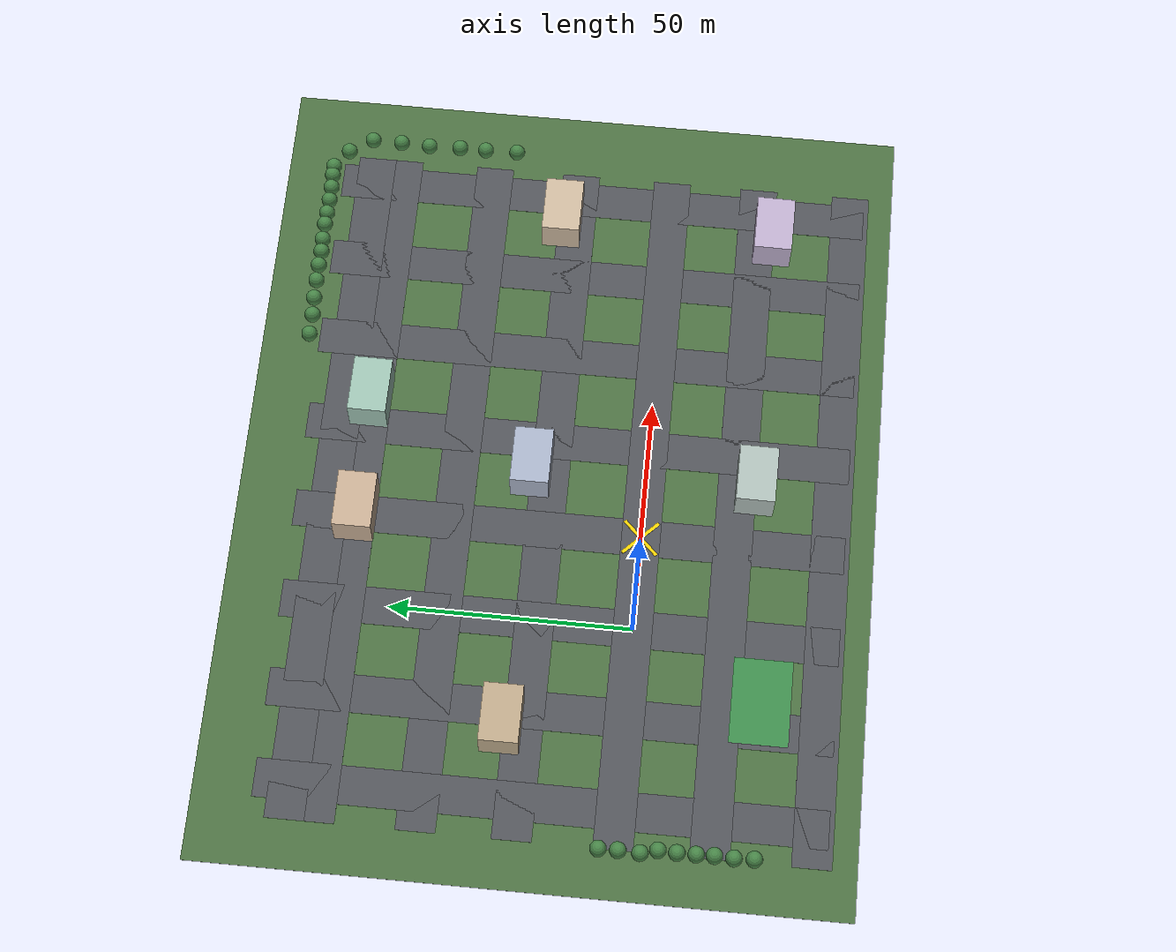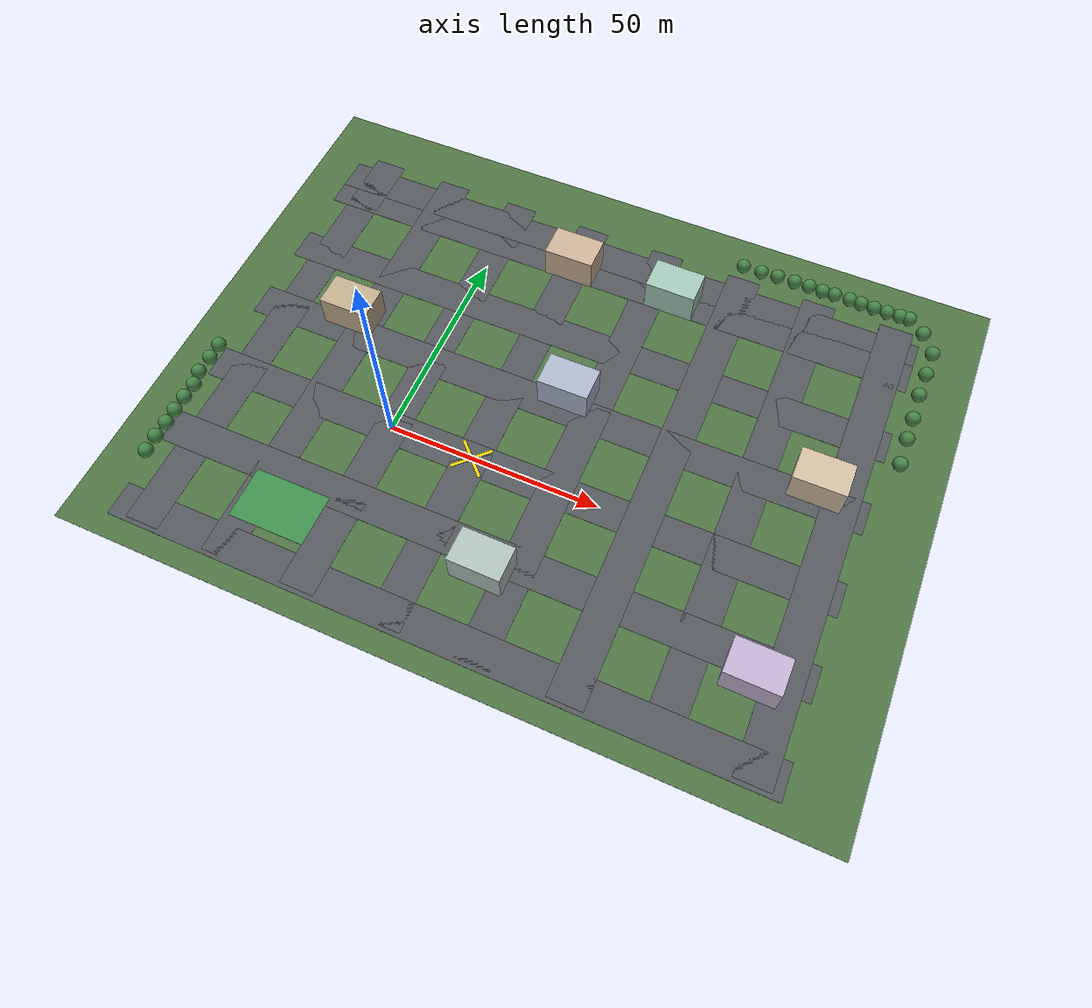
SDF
<sdf version="1.9">
 <world name="campus_pucrs">
  <model name="campus_ground">
   <static>true</static>
   <link name="link">
    <collision name="ground_collision">
     <pose>31.0 18.0 -0.05 0 0 0.0</pose>
     <geometry><box><size>174.0 132.0 0.1</size></box></geometry>
     <surface><friction><ode><mu>1.0</mu><mu2>1.0</mu2></ode></friction></surface>
    </collision>
    <visual name="ground_visual">
     <pose>31.0 18.0 -0.05 0 0 0.0</pose>
     <geometry><box><size>174.0 132.0 0.1</size></box></geometry>
     <material><ambient>0.180 0.264 0.156 1</ambient><diffuse>0.3 0.44 0.26 1</diffuse></material>
    </visual>
   </link>
  </model>
  <model name="robot_spawn_marker_x">
   <static>true</static>
   <link name="link">
    <visual name="spawn_marker_arm_a_visual">
     <pose>20.0 0.0 0.090 0 0 0.785398</pose>
     <geometry><box><size>10.0 0.72 0.08</size></box></geometry>
     <material>
      <ambient>1.0 0.82 0.02 1</ambient>
      <diffuse>1.0 0.82 0.02 1</diffuse>
      <emissive>1.0 0.82 0.02 1</emissive>
     </material>
    </visual>
    <visual name="spawn_marker_arm_b_visual">
     <pose>20.0 0.0 0.093 0 0 -0.785398</pose>
     <geometry><box><size>10.0 0.72 0.08</size></box></geometry>
     <material>
      <ambient>1.0 0.82 0.02 1</ambient>
      <diffuse>1.0 0.82 0.02 1</diffuse>
      <emissive>1.0 0.82 0.02 1</emissive>
     </material>
    </visual>
   </link>
  </model>
  <model name="road_v_-38.0">
   <static>true</static>
   <link name="link">
    <visual name="road_visual">
     <pose>-38.0 15.0 0.02 0 0 0.0</pose>
     <geometry><box><size>8.0 114.0 0.04</size></box></geometry>
     <material><ambient>0.192 0.198 0.210 1</ambient><diffuse>0.32 0.33 0.35 1</diffuse></material>
    </visual>
   </link>
  </model>
  <model name="road_v_-19.0">
   <static>true</static>
   <link name="link">
    <visual name="road_visual">
     <pose>-19.0 15.0 0.02 0 0 0.0</pose>
     <geometry><box><size>8.0 114.0 0.04</size></box></geometry>
     <material><ambient>0.192 0.198 0.210 1</ambient><diffuse>0.32 0.33 0.35 1</diffuse></material>
    </visual>
   </link>
  </model>
  <model name="road_v_0.0">
   <static>true</static>
   <link name="link">
    <visual name="road_visual">
     <pose>0.0 15.0 0.02 0 0 0.0</pose>
     <geometry><box><size>8.0 114.0 0.04</size></box></geometry>
     <material><ambient>0.192 0.198 0.210 1</ambient><diffuse>0.32 0.33 0.35 1</diffuse></material>
    </visual>
   </link>
  </model>
  <model name="road_v_20.0">
   <static>true</static>
   <link name="link">
    <visual name="road_visual">
     <pose>20.0 15.0 0.02 0 0 0.0</pose>
     <geometry><box><size>8.0 114.0 0.04</size></box></geometry>
     <material><ambient>0.192 0.198 0.210 1</ambient><diffuse>0.32 0.33 0.35 1</diffuse></material>
    </visual>
   </link>
  </model>
  <model name="road_v_40.0">
   <static>true</static>
   <link name="link">
    <visual name="road_visual">
     <pose>40.0 15.0 0.02 0 0 0.0</pose>
     <geometry><box><size>8.0 114.0 0.04</size></box></geometry>
     <material><ambient>0.192 0.198 0.210 1</ambient><diffuse>0.32 0.33 0.35 1</diffuse></material>
    </visual>
   </link>
  </model>
  <model name="road_v_60.0">
   <static>true</static>
   <link name="link">
    <visual name="road_visual">
     <pose>60.0 15.0 0.02 0 0 0.0</pose>
     <geometry><box><size>8.0 114.0 0.04</size></box></geometry>
     <material><ambient>0.192 0.198 0.210 1</ambient><diffuse>0.32 0.33 0.35 1</diffuse></material>
    </visual>
   </link>
  </model>
  <model name="road_v_79.0">
   <static>true</static>
   <link name="link">
    <visual name="road_visual">
     <pose>79.0 15.0 0.02 0 0 0.0</pose>
     <geometry><box><size>8.0 114.0 0.04</size></box></geometry>
     <material><ambient>0.192 0.198 0.210 1</ambient><diffuse>0.32 0.33 0.35 1</diffuse></material>
    </visual>
   </link>
  </model>
  <model name="road_v_98.0">
   <static>true</static>
   <link name="link">
    <visual name="road_visual">
     <pose>98.0 15.0 0.02 0 0 0.0</pose>
     <geometry><box><size>8.0 114.0 0.04</size></box></geometry>
     <material><ambient>0.192 0.198 0.210 1</ambient><diffuse>0.32 0.33 0.35 1</diffuse></material>
    </visual>
   </link>
  </model>
  <model name="road_h_-39.0">
   <static>true</static>
   <link name="link">
    <visual name="road_visual">
     <pose>29.0 -39.0 0.02 0 0 0.0</pose>
     <geometry><box><size>150.0 8.0 0.04</size></box></geometry>
     <material><ambient>0.192 0.198 0.210 1</ambient><diffuse>0.32 0.33 0.35 1</diffuse></material>
    </visual>
   </link>
  </model>
  <model name="road_h_-19.0">
   <static>true</static>
   <link name="link">
    <visual name="road_visual">
     <pose>29.0 -19.0 0.02 0 0 0.0</pose>
     <geometry><box><size>150.0 8.0 0.04</size></box></geometry>
     <material><ambient>0.192 0.198 0.210 1</ambient><diffuse>0.32 0.33 0.35 1</diffuse></material>
    </visual>
   </link>
  </model>
  <model name="road_h_0.0">
   <static>true</static>
   <link name="link">
    <visual name="road_visual">
     <pose>29.0 0.0 0.02 0 0 0.0</pose>
     <geometry><box><size>150.0 8.0 0.04</size></box></geometry>
     <material><ambient>0.192 0.198 0.210 1</ambient><diffuse>0.32 0.33 0.35 1</diffuse></material>
    </visual>
   </link>
  </model>
  <model name="road_h_20.0">
   <static>true</static>
   <link name="link">
    <visual name="road_visual">
     <pose>29.0 20.0 0.02 0 0 0.0</pose>
     <geometry><box><size>150.0 8.0 0.04</size></box></geometry>
     <material><ambient>0.192 0.198 0.210 1</ambient><diffuse>0.32 0.33 0.35 1</diffuse></material>
    </visual>
   </link>
  </model>
  <model name="road_h_39.0">
   <static>true</static>
   <link name="link">
    <visual name="road_visual">
     <pose>29.0 39.0 0.02 0 0 0.0</pose>
     <geometry><box><size>150.0 8.0 0.04</size></box></geometry>
     <material><ambient>0.192 0.198 0.210 1</ambient><diffuse>0.32 0.33 0.35 1</diffuse></material>
    </visual>
   </link>
  </model>
  <model name="road_h_59.0">
   <static>true</static>
   <link name="link">
    <visual name="road_visual">
     <pose>29.0 59.0 0.02 0 0 0.0</pose>
     <geometry><box><size>150.0 8.0 0.04</size></box></geometry>
     <material><ambient>0.192 0.198 0.210 1</ambient><diffuse>0.32 0.33 0.35 1</diffuse></material>
    </visual>
   </link>
  </model>
  <model name="road_h_65.0">
   <static>true</static>
   <link name="link">
    <visual name="road_visual">
     <pose>29.0 65.0 0.02 0 0 0.0</pose>
     <geometry><box><size>150.0 8.0 0.04</size></box></geometry>
     <material><ambient>0.192 0.198 0.210 1</ambient><diffuse>0.32 0.33 0.35 1</diffuse></material>
    </visual>
   </link>
  </model>
  <model name="school_1">
   <static>true</static>
   <link name="link">
    <collision name="body_collision">
     <pose>-22.51 24.33 4.0 0 0 0.0</pose>
     <geometry><box><size>12 8 8</size></box></geometry>
    </collision>
    <visual name="body_visual">
     <pose>-22.51 24.33 4.0 0 0 0.0</pose>
     <geometry><box><size>12 8 8</size></box></geometry>
     <material><ambient>0.444 0.396 0.324 1</ambient><diffuse>0.74 0.66 0.54 1</diffuse></material>
    </visual>
   </link>
  </model>
  <model name="school_2">
   <static>true</static>
   <link name="link">
    <collision name="body_collision">
     <pose>33.17 23.81 4.0 0 0 0.0</pose>
     <geometry><box><size>12 8 8</size></box></geometry>
    </collision>
    <visual name="body_visual">
     <pose>33.17 23.81 4.0 0 0 0.0</pose>
     <geometry><box><size>12 8 8</size></box></geometry>
     <material><ambient>0.396 0.420 0.468 1</ambient><diffuse>0.66 0.7 0.78 1</diffuse></material>
    </visual>
   </link>
  </model>
  <model name="school_3">
   <static>true</static>
   <link name="link">
    <collision name="body_collision">
     <pose>92.17 23.02 4.0 0 0 0.0</pose>
     <geometry><box><size>12 8 8</size></box></geometry>
    </collision>
    <visual name="body_visual">
     <pose>92.17 23.02 4.0 0 0 0.0</pose>
     <geometry><box><size>12 8 8</size></box></geometry>
     <material><ambient>0.480 0.432 0.372 1</ambient><diffuse>0.8 0.72 0.62 1</diffuse></material>
    </visual>
   </link>
  </model>
  <model name="school_4">
   <static>true</static>
   <link name="link">
    <collision name="body_collision">
     <pose>45.89 58.97 4.0 0 0 1.56</pose>
     <geometry><box><size>8 12 8</size></box></geometry>
    </collision>
    <visual name="body_visual">
     <pose>45.89 58.97 4.0 0 0 1.56</pose>
     <geometry><box><size>8 12 8</size></box></geometry>
     <material><ambient>0.372 0.456 0.420 1</ambient><diffuse>0.62 0.76 0.7 1</diffuse></material>
    </visual>
   </link>
  </model>
  <model name="school_5">
   <static>true</static>
   <link name="link">
    <collision name="body_collision">
     <pose>91.89 -22.61 4.0 0 0 3.13</pose>
     <geometry><box><size>12 8 8</size></box></geometry>
    </collision>
    <visual name="body_visual">
     <pose>91.89 -22.61 4.0 0 0 3.13</pose>
     <geometry><box><size>12 8 8</size></box></geometry>
     <material><ambient>0.444 0.408 0.480 1</ambient><diffuse>0.74 0.68 0.8 1</diffuse></material>
    </visual>
   </link>
  </model>
  <model name="school_6">
   <static>true</static>
   <link name="link">
    <collision name="body_collision">
     <pose>33.47 -22.74 4.0 0 0 3.13</pose>
     <geometry><box><size>12 8 8</size></box></geometry>
    </collision>
    <visual name="body_visual">
     <pose>33.47 -22.74 4.0 0 0 3.13</pose>
     <geometry><box><size>12 8 8</size></box></geometry>
     <material><ambient>0.408 0.444 0.432 1</ambient><diffuse>0.68 0.74 0.72 1</diffuse></material>
    </visual>
   </link>
  </model>
  <model name="school_7">
   <static>true</static>
   <link name="link">
    <collision name="body_collision">
     <pose>19.96 58.89 4.0 0 0 -1.57</pose>
     <geometry><box><size>8 12 8</size></box></geometry>
    </collision>
    <visual name="body_visual">
     <pose>19.96 58.89 4.0 0 0 -1.57</pose>
     <geometry><box><size>8 12 8</size></box></geometry>
     <material><ambient>0.468 0.408 0.348 1</ambient><diffuse>0.78 0.68 0.58 1</diffuse></material>
    </visual>
   </link>
  </model>
  <model name="robocup_field">
   <static>true</static>
   <link name="link">
    <visual name="field_visual">
     <pose>-12.92 -26.97 0.03 0 0 0.0</pose>
     <geometry><box><size>18.0 12.0 0.06</size></box></geometry>
     <material><ambient>0.144 0.330 0.180 1</ambient><diffuse>0.24 0.55 0.3 1</diffuse></material>
    </visual>
   </link>
  </model>
  <model name="oak_tree_0">
   <static>true</static>
   <link name="link">
    <collision name="trunk_collision">
     <pose>-45.8507 -27.6084 0.8 0.0 0.0 0</pose>
     <geometry><cylinder><radius>0.25</radius><length>1.6</length></cylinder></geometry>
    </collision>
    <visual name="trunk_visual">
     <pose>-45.8507 -27.6084 0.8 0.0 0.0 0</pose>
     <geometry><cylinder><radius>0.25</radius><length>1.6</length></cylinder></geometry>
     <material><ambient>0.252 0.180 0.108 1</ambient><diffuse>0.42 0.3 0.18 1</diffuse></material>
    </visual>
    <visual name="crown_visual">
     <pose>-45.8507 -27.6084 2.6 0 0 0</pose>
     <geometry><sphere><radius>1.7</radius></sphere></geometry>
     <material><ambient>0.168 0.312 0.168 1</ambient><diffuse>0.28 0.52 0.28 1</diffuse></material>
    </visual>
   </link>
  </model>
  <model name="oak_tree_1">
   <static>true</static>
   <link name="link">
    <collision name="trunk_collision">
     <pose>58.7873 73.9068 0.8 0.0 0.0 0</pose>
     <geometry><cylinder><radius>0.25</radius><length>1.6</length></cylinder></geometry>
    </collision>
    <visual name="trunk_visual">
     <pose>58.7873 73.9068 0.8 0.0 0.0 0</pose>
     <geometry><cylinder><radius>0.25</radius><length>1.6</length></cylinder></geometry>
     <material><ambient>0.252 0.180 0.108 1</ambient><diffuse>0.42 0.3 0.18 1</diffuse></material>
    </visual>
    <visual name="crown_visual">
     <pose>58.7873 73.9068 2.6 0 0 0</pose>
     <geometry><sphere><radius>1.7</radius></sphere></geometry>
     <material><ambient>0.168 0.312 0.168 1</ambient><diffuse>0.28 0.52 0.28 1</diffuse></material>
    </visual>
   </link>
  </model>
  <model name="oak_tree_2">
   <static>true</static>
   <link name="link">
    <collision name="trunk_collision">
     <pose>63.3588 73.8542 0.8 0.0 0.0 0</pose>
     <geometry><cylinder><radius>0.25</radius><length>1.6</length></cylinder></geometry>
    </collision>
    <visual name="trunk_visual">
     <pose>63.3588 73.8542 0.8 0.0 0.0 0</pose>
     <geometry><cylinder><radius>0.25</radius><length>1.6</length></cylinder></geometry>
     <material><ambient>0.252 0.180 0.108 1</ambient><diffuse>0.42 0.3 0.18 1</diffuse></material>
    </visual>
    <visual name="crown_visual">
     <pose>63.3588 73.8542 2.6 0 0 0</pose>
     <geometry><sphere><radius>1.7</radius></sphere></geometry>
     <material><ambient>0.168 0.312 0.168 1</ambient><diffuse>0.28 0.52 0.28 1</diffuse></material>
    </visual>
   </link>
  </model>
  <model name="oak_tree_3">
   <static>true</static>
   <link name="link">
    <collision name="trunk_collision">
     <pose>67.3848 74.0914 0.8 0.0 0.0 0</pose>
     <geometry><cylinder><radius>0.25</radius><length>1.6</length></cylinder></geometry>
    </collision>
    <visual name="trunk_visual">
     <pose>67.3848 74.0914 0.8 0.0 0.0 0</pose>
     <geometry><cylinder><radius>0.25</radius><length>1.6</length></cylinder></geometry>
     <material><ambient>0.252 0.180 0.108 1</ambient><diffuse>0.42 0.3 0.18 1</diffuse></material>
    </visual>
    <visual name="crown_visual">
     <pose>67.3848 74.0914 2.6 0 0 0</pose>
     <geometry><sphere><radius>1.7</radius></sphere></geometry>
     <material><ambient>0.168 0.312 0.168 1</ambient><diffuse>0.28 0.52 0.28 1</diffuse></material>
    </visual>
   </link>
  </model>
  <model name="oak_tree_4">
   <static>true</static>
   <link name="link">
    <collision name="trunk_collision">
     <pose>71.6046 74.1445 0.8 0.0 0.0 0</pose>
     <geometry><cylinder><radius>0.25</radius><length>1.6</length></cylinder></geometry>
    </collision>
    <visual name="trunk_visual">
     <pose>71.6046 74.1445 0.8 0.0 0.0 0</pose>
     <geometry><cylinder><radius>0.25</radius><length>1.6</length></cylinder></geometry>
     <material><ambient>0.252 0.180 0.108 1</ambient><diffuse>0.42 0.3 0.18 1</diffuse></material>
    </visual>
    <visual name="crown_visual">
     <pose>71.6046 74.1445 2.6 0 0 0</pose>
     <geometry><sphere><radius>1.7</radius></sphere></geometry>
     <material><ambient>0.168 0.312 0.168 1</ambient><diffuse>0.28 0.52 0.28 1</diffuse></material>
    </visual>
   </link>
  </model>
  <model name="oak_tree_5">
   <static>true</static>
   <link name="link">
    <collision name="trunk_collision">
     <pose>99.8071 74.0512 0.8 0.0 0.0 0</pose>
     <geometry><cylinder><radius>0.25</radius><length>1.6</length></cylinder></geometry>
    </collision>
    <visual name="trunk_visual">
     <pose>99.8071 74.0512 0.8 0.0 0.0 0</pose>
     <geometry><cylinder><radius>0.25</radius><length>1.6</length></cylinder></geometry>
     <material><ambient>0.252 0.180 0.108 1</ambient><diffuse>0.42 0.3 0.18 1</diffuse></material>
    </visual>
    <visual name="crown_visual">
     <pose>99.8071 74.0512 2.6 0 0 0</pose>
     <geometry><sphere><radius>1.7</radius></sphere></geometry>
     <material><ambient>0.168 0.312 0.168 1</ambient><diffuse>0.28 0.52 0.28 1</diffuse></material>
    </visual>
   </link>
  </model>
  <model name="oak_tree_6">
   <static>true</static>
   <link name="link">
    <collision name="trunk_collision">
     <pose>103.833 71.1472 0.8 0.0 0.0 0</pose>
     <geometry><cylinder><radius>0.25</radius><length>1.6</length></cylinder></geometry>
    </collision>
    <visual name="trunk_visual">
     <pose>103.833 71.1472 0.8 0.0 0.0 0</pose>
     <geometry><cylinder><radius>0.25</radius><length>1.6</length></cylinder></geometry>
     <material><ambient>0.252 0.180 0.108 1</ambient><diffuse>0.42 0.3 0.18 1</diffuse></material>
    </visual>
    <visual name="crown_visual">
     <pose>103.833 71.1472 2.6 0 0 0</pose>
     <geometry><sphere><radius>1.7</radius></sphere></geometry>
     <material><ambient>0.168 0.312 0.168 1</ambient><diffuse>0.28 0.52 0.28 1</diffuse></material>
    </visual>
   </link>
  </model>
  <model name="oak_tree_7">
   <static>true</static>
   <link name="link">
    <collision name="trunk_collision">
     <pose>107.085 66.2785 0.8 0.0 0.0 0</pose>
     <geometry><cylinder><radius>0.25</radius><length>1.6</length></cylinder></geometry>
    </collision>
    <visual name="trunk_visual">
     <pose>107.085 66.2785 0.8 0.0 0.0 0</pose>
     <geometry><cylinder><radius>0.25</radius><length>1.6</length></cylinder></geometry>
     <material><ambient>0.252 0.180 0.108 1</ambient><diffuse>0.42 0.3 0.18 1</diffuse></material>
    </visual>
    <visual name="crown_visual">
     <pose>107.085 66.2785 2.6 0 0 0</pose>
     <geometry><sphere><radius>1.7</radius></sphere></geometry>
     <material><ambient>0.168 0.312 0.168 1</ambient><diffuse>0.28 0.52 0.28 1</diffuse></material>
    </visual>
   </link>
  </model>
  <model name="oak_tree_8">
   <static>true</static>
   <link name="link">
    <collision name="trunk_collision">
     <pose>107.0 60.0 0.8 0.0 0.0 0</pose>
     <geometry><cylinder><radius>0.25</radius><length>1.6</length></cylinder></geometry>
    </collision>
    <visual name="trunk_visual">
     <pose>107.0 60.0 0.8 0.0 0.0 0</pose>
     <geometry><cylinder><radius>0.25</radius><length>1.6</length></cylinder></geometry>
     <material><ambient>0.252 0.180 0.108 1</ambient><diffuse>0.42 0.3 0.18 1</diffuse></material>
    </visual>
    <visual name="crown_visual">
     <pose>107.0 60.0 2.6 0 0 0</pose>
     <geometry><sphere><radius>1.7</radius></sphere></geometry>
     <material><ambient>0.168 0.312 0.168 1</ambient><diffuse>0.28 0.52 0.28 1</diffuse></material>
    </visual>
   </link>
  </model>
  <model name="oak_tree_9">
   <static>true</static>
   <link name="link">
    <collision name="trunk_collision">
     <pose>106.778 53.8309 0.8 0.0 0.0 0</pose>
     <geometry><cylinder><radius>0.25</radius><length>1.6</length></cylinder></geometry>
    </collision>
    <visual name="trunk_visual">
     <pose>106.778 53.8309 0.8 0.0 0.0 0</pose>
     <geometry><cylinder><radius>0.25</radius><length>1.6</length></cylinder></geometry>
     <material><ambient>0.252 0.180 0.108 1</ambient><diffuse>0.42 0.3 0.18 1</diffuse></material>
    </visual>
    <visual name="crown_visual">
     <pose>106.778 53.8309 2.6 0 0 0</pose>
     <geometry><sphere><radius>1.7</radius></sphere></geometry>
     <material><ambient>0.168 0.312 0.168 1</ambient><diffuse>0.28 0.52 0.28 1</diffuse></material>
    </visual>
   </link>
  </model>
  <model name="oak_tree_10">
   <static>true</static>
   <link name="link">
    <collision name="trunk_collision">
     <pose>106.957 47.0737 0.8 0.0 0.0 0</pose>
     <geometry><cylinder><radius>0.25</radius><length>1.6</length></cylinder></geometry>
    </collision>
    <visual name="trunk_visual">
     <pose>106.957 47.0737 0.8 0.0 0.0 0</pose>
     <geometry><cylinder><radius>0.25</radius><length>1.6</length></cylinder></geometry>
     <material><ambient>0.252 0.180 0.108 1</ambient><diffuse>0.42 0.3 0.18 1</diffuse></material>
    </visual>
    <visual name="crown_visual">
     <pose>106.957 47.0737 2.6 0 0 0</pose>
     <geometry><sphere><radius>1.7</radius></sphere></geometry>
     <material><ambient>0.168 0.312 0.168 1</ambient><diffuse>0.28 0.52 0.28 1</diffuse></material>
    </visual>
   </link>
  </model>
  <model name="oak_tree_11">
   <static>true</static>
   <link name="link">
    <collision name="trunk_collision">
     <pose>106.932 41.4 0.8 0.0 0.0 0</pose>
     <geometry><cylinder><radius>0.25</radius><length>1.6</length></cylinder></geometry>
    </collision>
    <visual name="trunk_visual">
     <pose>106.932 41.4 0.8 0.0 0.0 0</pose>
     <geometry><cylinder><radius>0.25</radius><length>1.6</length></cylinder></geometry>
     <material><ambient>0.252 0.180 0.108 1</ambient><diffuse>0.42 0.3 0.18 1</diffuse></material>
    </visual>
    <visual name="crown_visual">
     <pose>106.932 41.4 2.6 0 0 0</pose>
     <geometry><sphere><radius>1.7</radius></sphere></geometry>
     <material><ambient>0.168 0.312 0.168 1</ambient><diffuse>0.28 0.52 0.28 1</diffuse></material>
    </visual>
   </link>
  </model>
  <model name="oak_tree_12">
   <static>true</static>
   <link name="link">
    <collision name="trunk_collision">
     <pose>107.049 34.5471 0.8 0.0 0.0 0</pose>
     <geometry><cylinder><radius>0.25</radius><length>1.6</length></cylinder></geometry>
    </collision>
    <visual name="trunk_visual">
     <pose>107.049 34.5471 0.8 0.0 0.0 0</pose>
     <geometry><cylinder><radius>0.25</radius><length>1.6</length></cylinder></geometry>
     <material><ambient>0.252 0.180 0.108 1</ambient><diffuse>0.42 0.3 0.18 1</diffuse></material>
    </visual>
    <visual name="crown_visual">
     <pose>107.049 34.5471 2.6 0 0 0</pose>
     <geometry><sphere><radius>1.7</radius></sphere></geometry>
     <material><ambient>0.168 0.312 0.168 1</ambient><diffuse>0.28 0.52 0.28 1</diffuse></material>
    </visual>
   </link>
  </model>
  <model name="oak_tree_13">
   <static>true</static>
   <link name="link">
    <collision name="trunk_collision">
     <pose>75.2969 74.1503 0.8 0.0 0.0 0</pose>
     <geometry><cylinder><radius>0.25</radius><length>1.6</length></cylinder></geometry>
    </collision>
    <visual name="trunk_visual">
     <pose>75.2969 74.1503 0.8 0.0 0.0 0</pose>
     <geometry><cylinder><radius>0.25</radius><length>1.6</length></cylinder></geometry>
     <material><ambient>0.252 0.180 0.108 1</ambient><diffuse>0.42 0.3 0.18 1</diffuse></material>
    </visual>
    <visual name="crown_visual">
     <pose>75.2969 74.1503 2.6 0 0 0</pose>
     <geometry><sphere><radius>1.7</radius></sphere></geometry>
     <material><ambient>0.168 0.312 0.168 1</ambient><diffuse>0.28 0.52 0.28 1</diffuse></material>
    </visual>
   </link>
  </model>
  <model name="oak_tree_14">
   <static>true</static>
   <link name="link">
    <collision name="trunk_collision">
     <pose>78.6553 74.017 0.8 0.0 0.0 0</pose>
     <geometry><cylinder><radius>0.25</radius><length>1.6</length></cylinder></geometry>
    </collision>
    <visual name="trunk_visual">
     <pose>78.6553 74.017 0.8 0.0 0.0 0</pose>
     <geometry><cylinder><radius>0.25</radius><length>1.6</length></cylinder></geometry>
     <material><ambient>0.252 0.180 0.108 1</ambient><diffuse>0.42 0.3 0.18 1</diffuse></material>
    </visual>
    <visual name="crown_visual">
     <pose>78.6553 74.017 2.6 0 0 0</pose>
     <geometry><sphere><radius>1.7</radius></sphere></geometry>
     <material><ambient>0.168 0.312 0.168 1</ambient><diffuse>0.28 0.52 0.28 1</diffuse></material>
    </visual>
   </link>
  </model>
  <model name="oak_tree_15">
   <static>true</static>
   <link name="link">
    <collision name="trunk_collision">
     <pose>81.5914 74.1371 0.8 0.0 0.0 0</pose>
     <geometry><cylinder><radius>0.25</radius><length>1.6</length></cylinder></geometry>
    </collision>
    <visual name="trunk_visual">
     <pose>81.5914 74.1371 0.8 0.0 0.0 0</pose>
     <geometry><cylinder><radius>0.25</radius><length>1.6</length></cylinder></geometry>
     <material><ambient>0.252 0.180 0.108 1</ambient><diffuse>0.42 0.3 0.18 1</diffuse></material>
    </visual>
    <visual name="crown_visual">
     <pose>81.5914 74.1371 2.6 0 0 0</pose>
     <geometry><sphere><radius>1.7</radius></sphere></geometry>
     <material><ambient>0.168 0.312 0.168 1</ambient><diffuse>0.28 0.52 0.28 1</diffuse></material>
    </visual>
   </link>
  </model>
  <model name="oak_tree_16">
   <static>true</static>
   <link name="link">
    <collision name="trunk_collision">
     <pose>85.3365 74.1434 0.8 0.0 0.0 0</pose>
     <geometry><cylinder><radius>0.25</radius><length>1.6</length></cylinder></geometry>
    </collision>
    <visual name="trunk_visual">
     <pose>85.3365 74.1434 0.8 0.0 0.0 0</pose>
     <geometry><cylinder><radius>0.25</radius><length>1.6</length></cylinder></geometry>
     <material><ambient>0.252 0.180 0.108 1</ambient><diffuse>0.42 0.3 0.18 1</diffuse></material>
    </visual>
    <visual name="crown_visual">
     <pose>85.3365 74.1434 2.6 0 0 0</pose>
     <geometry><sphere><radius>1.7</radius></sphere></geometry>
     <material><ambient>0.168 0.312 0.168 1</ambient><diffuse>0.28 0.52 0.28 1</diffuse></material>
    </visual>
   </link>
  </model>
  <model name="oak_tree_17">
   <static>true</static>
   <link name="link">
    <collision name="trunk_collision">
     <pose>88.1147 74.0554 0.8 0.0 0.0 0</pose>
     <geometry><cylinder><radius>0.25</radius><length>1.6</length></cylinder></geometry>
    </collision>
    <visual name="trunk_visual">
     <pose>88.1147 74.0554 0.8 0.0 0.0 0</pose>
     <geometry><cylinder><radius>0.25</radius><length>1.6</length></cylinder></geometry>
     <material><ambient>0.252 0.180 0.108 1</ambient><diffuse>0.42 0.3 0.18 1</diffuse></material>
    </visual>
    <visual name="crown_visual">
     <pose>88.1147 74.0554 2.6 0 0 0</pose>
     <geometry><sphere><radius>1.7</radius></sphere></geometry>
     <material><ambient>0.168 0.312 0.168 1</ambient><diffuse>0.28 0.52 0.28 1</diffuse></material>
    </visual>
   </link>
  </model>
  <model name="oak_tree_18">
   <static>true</static>
   <link name="link">
    <collision name="trunk_collision">
     <pose>91.2972 73.9451 0.8 0.0 0.0 0</pose>
     <geometry><cylinder><radius>0.25</radius><length>1.6</length></cylinder></geometry>
    </collision>
    <visual name="trunk_visual">
     <pose>91.2972 73.9451 0.8 0.0 0.0 0</pose>
     <geometry><cylinder><radius>0.25</radius><length>1.6</length></cylinder></geometry>
     <material><ambient>0.252 0.180 0.108 1</ambient><diffuse>0.42 0.3 0.18 1</diffuse></material>
    </visual>
    <visual name="crown_visual">
     <pose>91.2972 73.9451 2.6 0 0 0</pose>
     <geometry><sphere><radius>1.7</radius></sphere></geometry>
     <material><ambient>0.168 0.312 0.168 1</ambient><diffuse>0.28 0.52 0.28 1</diffuse></material>
    </visual>
   </link>
  </model>
  <model name="oak_tree_19">
   <static>true</static>
   <link name="link">
    <collision name="trunk_collision">
     <pose>94.4973 73.927 0.8 0.0 0.0 0</pose>
     <geometry><cylinder><radius>0.25</radius><length>1.6</length></cylinder></geometry>
    </collision>
    <visual name="trunk_visual">
     <pose>94.4973 73.927 0.8 0.0 0.0 0</pose>
     <geometry><cylinder><radius>0.25</radius><length>1.6</length></cylinder></geometry>
     <material><ambient>0.252 0.180 0.108 1</ambient><diffuse>0.42 0.3 0.18 1</diffuse></material>
    </visual>
    <visual name="crown_visual">
     <pose>94.4973 73.927 2.6 0 0 0</pose>
     <geometry><sphere><radius>1.7</radius></sphere></geometry>
     <material><ambient>0.168 0.312 0.168 1</ambient><diffuse>0.28 0.52 0.28 1</diffuse></material>
    </visual>
   </link>
  </model>
  <model name="oak_tree_20">
   <static>true</static>
   <link name="link">
    <collision name="trunk_collision">
     <pose>97.5564 74.0473 0.8 0.0 0.0 0</pose>
     <geometry><cylinder><radius>0.25</radius><length>1.6</length></cylinder></geometry>
    </collision>
    <visual name="trunk_visual">
     <pose>97.5564 74.0473 0.8 0.0 0.0 0</pose>
     <geometry><cylinder><radius>0.25</radius><length>1.6</length></cylinder></geometry>
     <material><ambient>0.252 0.180 0.108 1</ambient><diffuse>0.42 0.3 0.18 1</diffuse></material>
    </visual>
    <visual name="crown_visual">
     <pose>97.5564 74.0473 2.6 0 0 0</pose>
     <geometry><sphere><radius>1.7</radius></sphere></geometry>
     <material><ambient>0.168 0.312 0.168 1</ambient><diffuse>0.28 0.52 0.28 1</diffuse></material>
    </visual>
   </link>
  </model>
  <model name="oak_tree_21">
   <static>true</static>
   <link name="link">
    <collision name="trunk_collision">
     <pose>-46.0054 -23.6481 0.8 0.0 0.0 0</pose>
     <geometry><cylinder><radius>0.25</radius><length>1.6</length></cylinder></geometry>
    </collision>
    <visual name="trunk_visual">
     <pose>-46.0054 -23.6481 0.8 0.0 0.0 0</pose>
     <geometry><cylinder><radius>0.25</radius><length>1.6</length></cylinder></geometry>
     <material><ambient>0.252 0.180 0.108 1</ambient><diffuse>0.42 0.3 0.18 1</diffuse></material>
    </visual>
    <visual name="crown_visual">
     <pose>-46.0054 -23.6481 2.6 0 0 0</pose>
     <geometry><sphere><radius>1.7</radius></sphere></geometry>
     <material><ambient>0.168 0.312 0.168 1</ambient><diffuse>0.28 0.52 0.28 1</diffuse></material>
    </visual>
   </link>
  </model>
  <model name="oak_tree_22">
   <static>true</static>
   <link name="link">
    <collision name="trunk_collision">
     <pose>-45.853 -19.83 0.8 0.0 0.0 0</pose>
     <geometry><cylinder><radius>0.25</radius><length>1.6</length></cylinder></geometry>
    </collision>
    <visual name="trunk_visual">
     <pose>-45.853 -19.83 0.8 0.0 0.0 0</pose>
     <geometry><cylinder><radius>0.25</radius><length>1.6</length></cylinder></geometry>
     <material><ambient>0.252 0.180 0.108 1</ambient><diffuse>0.42 0.3 0.18 1</diffuse></material>
    </visual>
    <visual name="crown_visual">
     <pose>-45.853 -19.83 2.6 0 0 0</pose>
     <geometry><sphere><radius>1.7</radius></sphere></geometry>
     <material><ambient>0.168 0.312 0.168 1</ambient><diffuse>0.28 0.52 0.28 1</diffuse></material>
    </visual>
   </link>
  </model>
  <model name="oak_tree_23">
   <static>true</static>
   <link name="link">
    <collision name="trunk_collision">
     <pose>-45.9444 -16.2895 0.8 0.0 0.0 0</pose>
     <geometry><cylinder><radius>0.25</radius><length>1.6</length></cylinder></geometry>
    </collision>
    <visual name="trunk_visual">
     <pose>-45.9444 -16.2895 0.8 0.0 0.0 0</pose>
     <geometry><cylinder><radius>0.25</radius><length>1.6</length></cylinder></geometry>
     <material><ambient>0.252 0.180 0.108 1</ambient><diffuse>0.42 0.3 0.18 1</diffuse></material>
    </visual>
    <visual name="crown_visual">
     <pose>-45.9444 -16.2895 2.6 0 0 0</pose>
     <geometry><sphere><radius>1.7</radius></sphere></geometry>
     <material><ambient>0.168 0.312 0.168 1</ambient><diffuse>0.28 0.52 0.28 1</diffuse></material>
    </visual>
   </link>
  </model>
  <model name="oak_tree_24">
   <static>true</static>
   <link name="link">
    <collision name="trunk_collision">
     <pose>-45.9615 -12.5098 0.8 0.0 0.0 0</pose>
     <geometry><cylinder><radius>0.25</radius><length>1.6</length></cylinder></geometry>
    </collision>
    <visual name="trunk_visual">
     <pose>-45.9615 -12.5098 0.8 0.0 0.0 0</pose>
     <geometry><cylinder><radius>0.25</radius><length>1.6</length></cylinder></geometry>
     <material><ambient>0.252 0.180 0.108 1</ambient><diffuse>0.42 0.3 0.18 1</diffuse></material>
    </visual>
    <visual name="crown_visual">
     <pose>-45.9615 -12.5098 2.6 0 0 0</pose>
     <geometry><sphere><radius>1.7</radius></sphere></geometry>
     <material><ambient>0.168 0.312 0.168 1</ambient><diffuse>0.28 0.52 0.28 1</diffuse></material>
    </visual>
   </link>
  </model>
  <model name="oak_tree_25">
   <static>true</static>
   <link name="link">
    <collision name="trunk_collision">
     <pose>-45.8262 -8.78087 0.8 0.0 0.0 0</pose>
     <geometry><cylinder><radius>0.25</radius><length>1.6</length></cylinder></geometry>
    </collision>
    <visual name="trunk_visual">
     <pose>-45.8262 -8.78087 0.8 0.0 0.0 0</pose>
     <geometry><cylinder><radius>0.25</radius><length>1.6</length></cylinder></geometry>
     <material><ambient>0.252 0.180 0.108 1</ambient><diffuse>0.42 0.3 0.18 1</diffuse></material>
    </visual>
    <visual name="crown_visual">
     <pose>-45.8262 -8.78087 2.6 0 0 0</pose>
     <geometry><sphere><radius>1.7</radius></sphere></geometry>
     <material><ambient>0.168 0.312 0.168 1</ambient><diffuse>0.28 0.52 0.28 1</diffuse></material>
    </visual>
   </link>
  </model>
  <model name="oak_tree_26">
   <static>true</static>
   <link name="link">
    <collision name="trunk_collision">
     <pose>-46.7063 -5.35408 0.8 0.0 0.0 0</pose>
     <geometry><cylinder><radius>0.25</radius><length>1.6</length></cylinder></geometry>
    </collision>
    <visual name="trunk_visual">
     <pose>-46.7063 -5.35408 0.8 0.0 0.0 0</pose>
     <geometry><cylinder><radius>0.25</radius><length>1.6</length></cylinder></geometry>
     <material><ambient>0.252 0.180 0.108 1</ambient><diffuse>0.42 0.3 0.18 1</diffuse></material>
    </visual>
    <visual name="crown_visual">
     <pose>-46.7063 -5.35408 2.6 0 0 0</pose>
     <geometry><sphere><radius>1.7</radius></sphere></geometry>
     <material><ambient>0.168 0.312 0.168 1</ambient><diffuse>0.28 0.52 0.28 1</diffuse></material>
    </visual>
   </link>
  </model>
  <model name="oak_tree_27">
   <static>true</static>
   <link name="link">
    <collision name="trunk_collision">
     <pose>-46.5387 -1.00848 0.8 0.0 0.0 0</pose>
     <geometry><cylinder><radius>0.25</radius><length>1.6</length></cylinder></geometry>
    </collision>
    <visual name="trunk_visual">
     <pose>-46.5387 -1.00848 0.8 0.0 0.0 0</pose>
     <geometry><cylinder><radius>0.25</radius><length>1.6</length></cylinder></geometry>
     <material><ambient>0.252 0.180 0.108 1</ambient><diffuse>0.42 0.3 0.18 1</diffuse></material>
    </visual>
    <visual name="crown_visual">
     <pose>-46.5387 -1.00848 2.6 0 0 0</pose>
     <geometry><sphere><radius>1.7</radius></sphere></geometry>
     <material><ambient>0.168 0.312 0.168 1</ambient><diffuse>0.28 0.52 0.28 1</diffuse></material>
    </visual>
   </link>
  </model>
  <model name="oak_tree_28">
   <static>true</static>
   <link name="link">
    <collision name="trunk_collision">
     <pose>-46.5984 2.87375 0.8 0.0 0.0 0</pose>
     <geometry><cylinder><radius>0.25</radius><length>1.6</length></cylinder></geometry>
    </collision>
    <visual name="trunk_visual">
     <pose>-46.5984 2.87375 0.8 0.0 0.0 0</pose>
     <geometry><cylinder><radius>0.25</radius><length>1.6</length></cylinder></geometry>
     <material><ambient>0.252 0.180 0.108 1</ambient><diffuse>0.42 0.3 0.18 1</diffuse></material>
    </visual>
    <visual name="crown_visual">
     <pose>-46.5984 2.87375 2.6 0 0 0</pose>
     <geometry><sphere><radius>1.7</radius></sphere></geometry>
     <material><ambient>0.168 0.312 0.168 1</ambient><diffuse>0.28 0.52 0.28 1</diffuse></material>
    </visual>
   </link>
  </model>
 </world>
</sdf>
